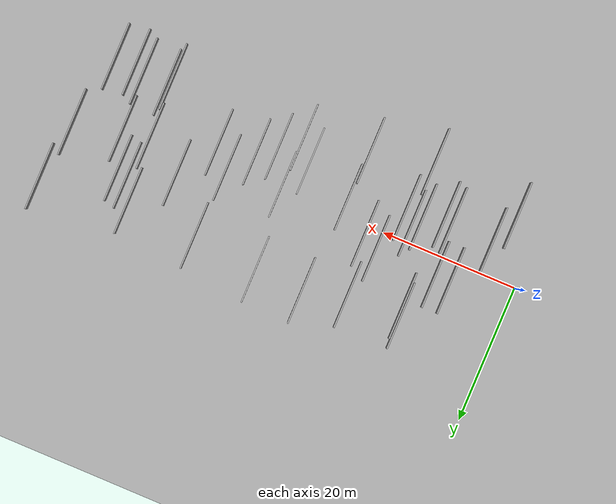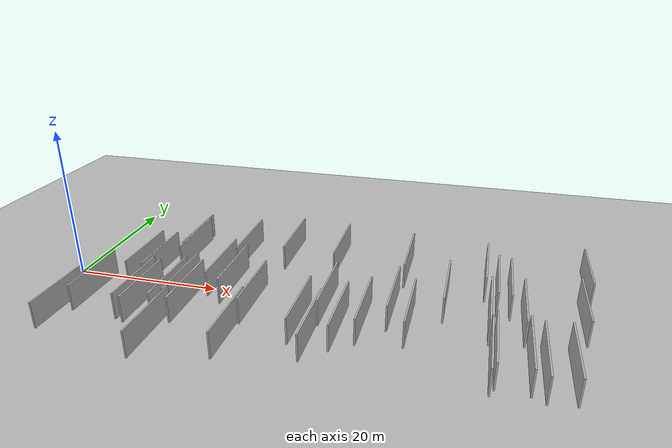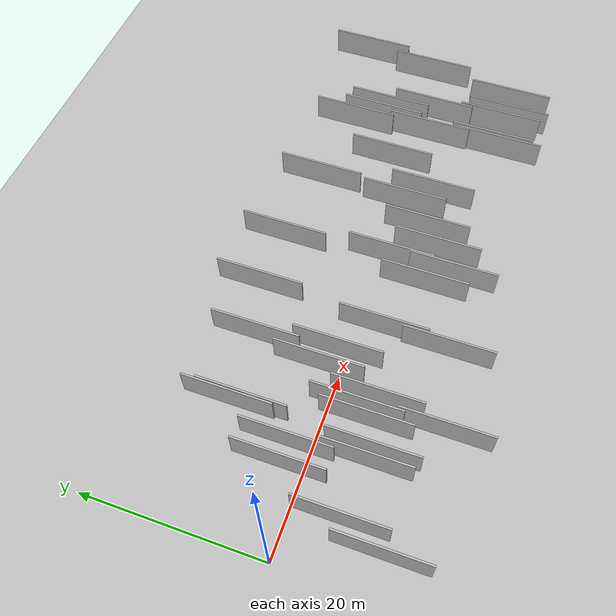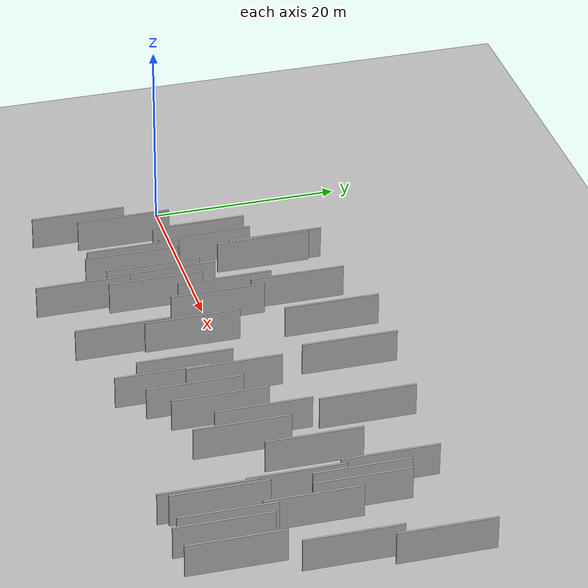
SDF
<?xml version="1.0" encoding="utf-8"?>

<sdf version="1.6">

   <world name="default">

      <gui fullscreen="0">

         <camera name="user_camera">

            <pose>-15 0 4.57585 0 0 0</pose>

            <view_controller>orbit</view_controller>

         </camera>

      </gui>

      <scene>

         <sky>

           <clouds>

             <speed>12</speed>

           </clouds>

         </sky>

         <ambient>0.4 0.4 0.4 1</ambient>

         <background>0.7 0.7 0.7 1</background>

         <shadows>1</shadows>

      </scene>

      <gravity>0 0 -9.8066</gravity>

      <magnetic_field>6e-06 2.3e-05 -4.2e-05</magnetic_field>

      <physics default="0" name="default_physics" type="ode">

         <ode>

            <solver>

               <type>quick</type>

               <iters>10</iters>

               <sor>1.0</sor>

               <use_dynamic_moi_rescaling>0</use_dynamic_moi_rescaling>

            </solver>

            <constraints>

               <cfm>0</cfm>

               <erp>0.2</erp>

               <contact_max_correcting_vel>100</contact_max_correcting_vel>

               <contact_surface_layer>0.001</contact_surface_layer>

            </constraints>

         </ode>

         <max_step_size>0.004</max_step_size>

         <real_time_factor>1</real_time_factor>

         <real_time_update_rate>250</real_time_update_rate>

      </physics>

      <light name="sun" type="directional">

         <cast_shadows>1</cast_shadows>

         <pose>0 0 10 0 0 0</pose>

         <diffuse>0.8 0.8 0.8 1</diffuse>

         <specular>0.2 0.2 0.2 1</specular>

         <attenuation>

            <range>1000</range>

            <constant>0.9</constant>

            <linear>0.01</linear>

            <quadratic>0.001</quadratic>

         </attenuation>

         <direction>-0.5 0.1 -0.9</direction>

      </light>

      <include>

         <name>ground_plane_1</name>

         <uri>model://HANNAS_ground_plane</uri>

         <pose>0 0 0  0 0 0</pose>

      </include>

      <include>

         <name>ground_plane_2</name>

         <uri>model://HANNAS_ground_plane</uri>

         <pose>100 0 0  0 0 0</pose>

      </include>

      <model name="HANNAS_wall_1">

         <static>1</static>

         <pose frame="">46.1944 -2.6719 0.0 0.000000 0.000000 1.570796</pose>

         <link name="link">

            <pose frame="">0 0 2.00 0 0 0</pose>

            <collision name="collision">

               <geometry>

                  <box>

                     <size>10.00 0.2 4.00</size>

                  </box>

               </geometry>

               <max_contacts>10</max_contacts>

               <surface>

                  <contact>

                     <ode/>

                  </contact>

                  <bounce/>

                  <friction>

                     <torsional>

                        <ode/>

                     </torsional>

                     <ode/>

                  </friction>

               </surface>

            </collision>

            <visual name="visual">

               <cast_shadows>0</cast_shadows>

               <geometry>

                  <box>

                     <size>10.00 0.2 4.00</size>

                  </box>

               </geometry>

               <material>

                  <script>

                     <uri>model://HANNAS_wall/materials/scripts</uri>

                     <uri>model://HANNAS_wall/materials/textures</uri>

                     <name>vrc/HANNAS_wall</name>

                  </script>

               </material>

            </visual>

            <self_collide>0</self_collide>

            <enable_wind>0</enable_wind>

            <kinematic>0</kinematic>

         </link>

      </model>

      <model name="HANNAS_wall_2">

         <static>1</static>

         <pose frame="">66.1743 2.6868 0.0 0.000000 0.000000 1.570796</pose>

         <link name="link">

            <pose frame="">0 0 2.00 0 0 0</pose>

            <collision name="collision">

               <geometry>

                  <box>

                     <size>10.00 0.2 4.00</size>

                  </box>

               </geometry>

               <max_contacts>10</max_contacts>

               <surface>

                  <contact>

                     <ode/>

                  </contact>

                  <bounce/>

                  <friction>

                     <torsional>

                        <ode/>

                     </torsional>

                     <ode/>

                  </friction>

               </surface>

            </collision>

            <visual name="visual">

               <cast_shadows>0</cast_shadows>

               <geometry>

                  <box>

                     <size>10.00 0.2 4.00</size>

                  </box>

               </geometry>

               <material>

                  <script>

                     <uri>model://HANNAS_wall/materials/scripts</uri>

                     <uri>model://HANNAS_wall/materials/textures</uri>

                     <name>vrc/HANNAS_wall</name>

                  </script>

               </material>

            </visual>

            <self_collide>0</self_collide>

            <enable_wind>0</enable_wind>

            <kinematic>0</kinematic>

         </link>

      </model>

      <model name="HANNAS_wall_3">

         <static>1</static>

         <pose frame="">59.7447 -7.7299 0.0 0.000000 0.000000 1.570796</pose>

         <link name="link">

            <pose frame="">0 0 2.00 0 0 0</pose>

            <collision name="collision">

               <geometry>

                  <box>

                     <size>10.00 0.2 4.00</size>

                  </box>

               </geometry>

               <max_contacts>10</max_contacts>

               <surface>

                  <contact>

                     <ode/>

                  </contact>

                  <bounce/>

                  <friction>

                     <torsional>

                        <ode/>

                     </torsional>

                     <ode/>

                  </friction>

               </surface>

            </collision>

            <visual name="visual">

               <cast_shadows>0</cast_shadows>

               <geometry>

                  <box>

                     <size>10.00 0.2 4.00</size>

                  </box>

               </geometry>

               <material>

                  <script>

                     <uri>model://HANNAS_wall/materials/scripts</uri>

                     <uri>model://HANNAS_wall/materials/textures</uri>

                     <name>vrc/HANNAS_wall</name>

                  </script>

               </material>

            </visual>

            <self_collide>0</self_collide>

            <enable_wind>0</enable_wind>

            <kinematic>0</kinematic>

         </link>

      </model>

      <model name="HANNAS_wall_4">

         <static>1</static>

         <pose frame="">64.1469 -8.0985 0.0 0.000000 0.000000 1.570796</pose>

         <link name="link">

            <pose frame="">0 0 2.00 0 0 0</pose>

            <collision name="collision">

               <geometry>

                  <box>

                     <size>10.00 0.2 4.00</size>

                  </box>

               </geometry>

               <max_contacts>10</max_contacts>

               <surface>

                  <contact>

                     <ode/>

                  </contact>

                  <bounce/>

                  <friction>

                     <torsional>

                        <ode/>

                     </torsional>

                     <ode/>

                  </friction>

               </surface>

            </collision>

            <visual name="visual">

               <cast_shadows>0</cast_shadows>

               <geometry>

                  <box>

                     <size>10.00 0.2 4.00</size>

                  </box>

               </geometry>

               <material>

                  <script>

                     <uri>model://HANNAS_wall/materials/scripts</uri>

                     <uri>model://HANNAS_wall/materials/textures</uri>

                     <name>vrc/HANNAS_wall</name>

                  </script>

               </material>

            </visual>

            <self_collide>0</self_collide>

            <enable_wind>0</enable_wind>

            <kinematic>0</kinematic>

         </link>

      </model>

      <model name="HANNAS_wall_5">

         <static>1</static>

         <pose frame="">11.7947 -5.3657 0.0 0.000000 0.000000 1.570796</pose>

         <link name="link">

            <pose frame="">0 0 2.00 0 0 0</pose>

            <collision name="collision">

               <geometry>

                  <box>

                     <size>10.00 0.2 4.00</size>

                  </box>

               </geometry>

               <max_contacts>10</max_contacts>

               <surface>

                  <contact>

                     <ode/>

                  </contact>

                  <bounce/>

                  <friction>

                     <torsional>

                        <ode/>

                     </torsional>

                     <ode/>

                  </friction>

               </surface>

            </collision>

            <visual name="visual">

               <cast_shadows>0</cast_shadows>

               <geometry>

                  <box>

                     <size>10.00 0.2 4.00</size>

                  </box>

               </geometry>

               <material>

                  <script>

                     <uri>model://HANNAS_wall/materials/scripts</uri>

                     <uri>model://HANNAS_wall/materials/textures</uri>

                     <name>vrc/HANNAS_wall</name>

                  </script>

               </material>

            </visual>

            <self_collide>0</self_collide>

            <enable_wind>0</enable_wind>

            <kinematic>0</kinematic>

         </link>

      </model>

      <model name="HANNAS_wall_6">

         <static>1</static>

         <pose frame="">26.2054 -9.8777 0.0 0.000000 0.000000 1.570796</pose>

         <link name="link">

            <pose frame="">0 0 2.00 0 0 0</pose>

            <collision name="collision">

               <geometry>

                  <box>

                     <size>10.00 0.2 4.00</size>

                  </box>

               </geometry>

               <max_contacts>10</max_contacts>

               <surface>

                  <contact>

                     <ode/>

                  </contact>

                  <bounce/>

                  <friction>

                     <torsional>

                        <ode/>

                     </torsional>

                     <ode/>

                  </friction>

               </surface>

            </collision>

            <visual name="visual">

               <cast_shadows>0</cast_shadows>

               <geometry>

                  <box>

                     <size>10.00 0.2 4.00</size>

                  </box>

               </geometry>

               <material>

                  <script>

                     <uri>model://HANNAS_wall/materials/scripts</uri>

                     <uri>model://HANNAS_wall/materials/textures</uri>

                     <name>vrc/HANNAS_wall</name>

                  </script>

               </material>

            </visual>

            <self_collide>0</self_collide>

            <enable_wind>0</enable_wind>

            <kinematic>0</kinematic>

         </link>

      </model>

      <model name="HANNAS_wall_7">

         <static>1</static>

         <pose frame="">15.8672 -4.1715 0.0 0.000000 0.000000 1.570796</pose>

         <link name="link">

            <pose frame="">0 0 2.00 0 0 0</pose>

            <collision name="collision">

               <geometry>

                  <box>

                     <size>10.00 0.2 4.00</size>

                  </box>

               </geometry>

               <max_contacts>10</max_contacts>

               <surface>

                  <contact>

                     <ode/>

                  </contact>

                  <bounce/>

                  <friction>

                     <torsional>

                        <ode/>

                     </torsional>

                     <ode/>

                  </friction>

               </surface>

            </collision>

            <visual name="visual">

               <cast_shadows>0</cast_shadows>

               <geometry>

                  <box>

                     <size>10.00 0.2 4.00</size>

                  </box>

               </geometry>

               <material>

                  <script>

                     <uri>model://HANNAS_wall/materials/scripts</uri>

                     <uri>model://HANNAS_wall/materials/textures</uri>

                     <name>vrc/HANNAS_wall</name>

                  </script>

               </material>

            </visual>

            <self_collide>0</self_collide>

            <enable_wind>0</enable_wind>

            <kinematic>0</kinematic>

         </link>

      </model>

      <model name="HANNAS_wall_8">

         <static>1</static>

         <pose frame="">54.6844 9.7779 0.0 0.000000 0.000000 1.570796</pose>

         <link name="link">

            <pose frame="">0 0 2.00 0 0 0</pose>

            <collision name="collision">

               <geometry>

                  <box>

                     <size>10.00 0.2 4.00</size>

                  </box>

               </geometry>

               <max_contacts>10</max_contacts>

               <surface>

                  <contact>

                     <ode/>

                  </contact>

                  <bounce/>

                  <friction>

                     <torsional>

                        <ode/>

                     </torsional>

                     <ode/>

                  </friction>

               </surface>

            </collision>

            <visual name="visual">

               <cast_shadows>0</cast_shadows>

               <geometry>

                  <box>

                     <size>10.00 0.2 4.00</size>

                  </box>

               </geometry>

               <material>

                  <script>

                     <uri>model://HANNAS_wall/materials/scripts</uri>

                     <uri>model://HANNAS_wall/materials/textures</uri>

                     <name>vrc/HANNAS_wall</name>

                  </script>

               </material>

            </visual>

            <self_collide>0</self_collide>

            <enable_wind>0</enable_wind>

            <kinematic>0</kinematic>

         </link>

      </model>

      <model name="HANNAS_wall_9">

         <static>1</static>

         <pose frame="">26.5602 -2.6803 0.0 0.000000 0.000000 1.570796</pose>

         <link name="link">

            <pose frame="">0 0 2.00 0 0 0</pose>

            <collision name="collision">

               <geometry>

                  <box>

                     <size>10.00 0.2 4.00</size>

                  </box>

               </geometry>

               <max_contacts>10</max_contacts>

               <surface>

                  <contact>

                     <ode/>

                  </contact>

                  <bounce/>

                  <friction>

                     <torsional>

                        <ode/>

                     </torsional>

                     <ode/>

                  </friction>

               </surface>

            </collision>

            <visual name="visual">

               <cast_shadows>0</cast_shadows>

               <geometry>

                  <box>

                     <size>10.00 0.2 4.00</size>

                  </box>

               </geometry>

               <material>

                  <script>

                     <uri>model://HANNAS_wall/materials/scripts</uri>

                     <uri>model://HANNAS_wall/materials/textures</uri>

                     <name>vrc/HANNAS_wall</name>

                  </script>

               </material>

            </visual>

            <self_collide>0</self_collide>

            <enable_wind>0</enable_wind>

            <kinematic>0</kinematic>

         </link>

      </model>

      <model name="HANNAS_wall_10">

         <static>1</static>

         <pose frame="">13.6377 8.3265 0.0 0.000000 0.000000 1.570796</pose>

         <link name="link">

            <pose frame="">0 0 2.00 0 0 0</pose>

            <collision name="collision">

               <geometry>

                  <box>

                     <size>10.00 0.2 4.00</size>

                  </box>

               </geometry>

               <max_contacts>10</max_contacts>

               <surface>

                  <contact>

                     <ode/>

                  </contact>

                  <bounce/>

                  <friction>

                     <torsional>

                        <ode/>

                     </torsional>

                     <ode/>

                  </friction>

               </surface>

            </collision>

            <visual name="visual">

               <cast_shadows>0</cast_shadows>

               <geometry>

                  <box>

                     <size>10.00 0.2 4.00</size>

                  </box>

               </geometry>

               <material>

                  <script>

                     <uri>model://HANNAS_wall/materials/scripts</uri>

                     <uri>model://HANNAS_wall/materials/textures</uri>

                     <name>vrc/HANNAS_wall</name>

                  </script>

               </material>

            </visual>

            <self_collide>0</self_collide>

            <enable_wind>0</enable_wind>

            <kinematic>0</kinematic>

         </link>

      </model>

      <model name="HANNAS_wall_11">

         <static>1</static>

         <pose frame="">17.2770 -11.9880 0.0 0.000000 0.000000 1.570796</pose>

         <link name="link">

            <pose frame="">0 0 2.00 0 0 0</pose>

            <collision name="collision">

               <geometry>

                  <box>

                     <size>10.00 0.2 4.00</size>

                  </box>

               </geometry>

               <max_contacts>10</max_contacts>

               <surface>

                  <contact>

                     <ode/>

                  </contact>

                  <bounce/>

                  <friction>

                     <torsional>

                        <ode/>

                     </torsional>

                     <ode/>

                  </friction>

               </surface>

            </collision>

            <visual name="visual">

               <cast_shadows>0</cast_shadows>

               <geometry>

                  <box>

                     <size>10.00 0.2 4.00</size>

                  </box>

               </geometry>

               <material>

                  <script>

                     <uri>model://HANNAS_wall/materials/scripts</uri>

                     <uri>model://HANNAS_wall/materials/textures</uri>

                     <name>vrc/HANNAS_wall</name>

                  </script>

               </material>

            </visual>

            <self_collide>0</self_collide>

            <enable_wind>0</enable_wind>

            <kinematic>0</kinematic>

         </link>

      </model>

      <model name="HANNAS_wall_12">

         <static>1</static>

         <pose frame="">67.4235 11.4272 0.0 0.000000 0.000000 1.570796</pose>

         <link name="link">

            <pose frame="">0 0 2.00 0 0 0</pose>

            <collision name="collision">

               <geometry>

                  <box>

                     <size>10.00 0.2 4.00</size>

                  </box>

               </geometry>

               <max_contacts>10</max_contacts>

               <surface>

                  <contact>

                     <ode/>

                  </contact>

                  <bounce/>

                  <friction>

                     <torsional>

                        <ode/>

                     </torsional>

                     <ode/>

                  </friction>

               </surface>

            </collision>

            <visual name="visual">

               <cast_shadows>0</cast_shadows>

               <geometry>

                  <box>

                     <size>10.00 0.2 4.00</size>

                  </box>

               </geometry>

               <material>

                  <script>

                     <uri>model://HANNAS_wall/materials/scripts</uri>

                     <uri>model://HANNAS_wall/materials/textures</uri>

                     <name>vrc/HANNAS_wall</name>

                  </script>

               </material>

            </visual>

            <self_collide>0</self_collide>

            <enable_wind>0</enable_wind>

            <kinematic>0</kinematic>

         </link>

      </model>

      <model name="HANNAS_wall_13">

         <static>1</static>

         <pose frame="">56.1183 -7.5650 0.0 0.000000 0.000000 1.570796</pose>

         <link name="link">

            <pose frame="">0 0 2.00 0 0 0</pose>

            <collision name="collision">

               <geometry>

                  <box>

                     <size>10.00 0.2 4.00</size>

                  </box>

               </geometry>

               <max_contacts>10</max_contacts>

               <surface>

                  <contact>

                     <ode/>

                  </contact>

                  <bounce/>

                  <friction>

                     <torsional>

                        <ode/>

                     </torsional>

                     <ode/>

                  </friction>

               </surface>

            </collision>

            <visual name="visual">

               <cast_shadows>0</cast_shadows>

               <geometry>

                  <box>

                     <size>10.00 0.2 4.00</size>

                  </box>

               </geometry>

               <material>

                  <script>

                     <uri>model://HANNAS_wall/materials/scripts</uri>

                     <uri>model://HANNAS_wall/materials/textures</uri>

                     <name>vrc/HANNAS_wall</name>

                  </script>

               </material>

            </visual>

            <self_collide>0</self_collide>

            <enable_wind>0</enable_wind>

            <kinematic>0</kinematic>

         </link>

      </model>

      <model name="HANNAS_wall_14">

         <static>1</static>

         <pose frame="">12.9855 -5.7944 0.0 0.000000 0.000000 1.570796</pose>

         <link name="link">

            <pose frame="">0 0 2.00 0 0 0</pose>

            <collision name="collision">

               <geometry>

                  <box>

                     <size>10.00 0.2 4.00</size>

                  </box>

               </geometry>

               <max_contacts>10</max_contacts>

               <surface>

                  <contact>

                     <ode/>

                  </contact>

                  <bounce/>

                  <friction>

                     <torsional>

                        <ode/>

                     </torsional>

                     <ode/>

                  </friction>

               </surface>

            </collision>

            <visual name="visual">

               <cast_shadows>0</cast_shadows>

               <geometry>

                  <box>

                     <size>10.00 0.2 4.00</size>

                  </box>

               </geometry>

               <material>

                  <script>

                     <uri>model://HANNAS_wall/materials/scripts</uri>

                     <uri>model://HANNAS_wall/materials/textures</uri>

                     <name>vrc/HANNAS_wall</name>

                  </script>

               </material>

            </visual>

            <self_collide>0</self_collide>

            <enable_wind>0</enable_wind>

            <kinematic>0</kinematic>

         </link>

      </model>

      <model name="HANNAS_wall_15">

         <static>1</static>

         <pose frame="">44.2848 10.6648 0.0 0.000000 0.000000 1.570796</pose>

         <link name="link">

            <pose frame="">0 0 2.00 0 0 0</pose>

            <collision name="collision">

               <geometry>

                  <box>

                     <size>10.00 0.2 4.00</size>

                  </box>

               </geometry>

               <max_contacts>10</max_contacts>

               <surface>

                  <contact>

                     <ode/>

                  </contact>

                  <bounce/>

                  <friction>

                     <torsional>

                        <ode/>

                     </torsional>

                     <ode/>

                  </friction>

               </surface>

            </collision>

            <visual name="visual">

               <cast_shadows>0</cast_shadows>

               <geometry>

                  <box>

                     <size>10.00 0.2 4.00</size>

                  </box>

               </geometry>

               <material>

                  <script>

                     <uri>model://HANNAS_wall/materials/scripts</uri>

                     <uri>model://HANNAS_wall/materials/textures</uri>

                     <name>vrc/HANNAS_wall</name>

                  </script>

               </material>

            </visual>

            <self_collide>0</self_collide>

            <enable_wind>0</enable_wind>

            <kinematic>0</kinematic>

         </link>

      </model>

      <model name="HANNAS_wall_16">

         <static>1</static>

         <pose frame="">33.3960 -5.2320 0.0 0.000000 0.000000 1.570796</pose>

         <link name="link">

            <pose frame="">0 0 2.00 0 0 0</pose>

            <collision name="collision">

               <geometry>

                  <box>

                     <size>10.00 0.2 4.00</size>

                  </box>

               </geometry>

               <max_contacts>10</max_contacts>

               <surface>

                  <contact>

                     <ode/>

                  </contact>

                  <bounce/>

                  <friction>

                     <torsional>

                        <ode/>

                     </torsional>

                     <ode/>

                  </friction>

               </surface>

            </collision>

            <visual name="visual">

               <cast_shadows>0</cast_shadows>

               <geometry>

                  <box>

                     <size>10.00 0.2 4.00</size>

                  </box>

               </geometry>

               <material>

                  <script>

                     <uri>model://HANNAS_wall/materials/scripts</uri>

                     <uri>model://HANNAS_wall/materials/textures</uri>

                     <name>vrc/HANNAS_wall</name>

                  </script>

               </material>

            </visual>

            <self_collide>0</self_collide>

            <enable_wind>0</enable_wind>

            <kinematic>0</kinematic>

         </link>

      </model>

      <model name="HANNAS_wall_17">

         <static>1</static>

         <pose frame="">3.7896 -9.5188 0.0 0.000000 0.000000 1.570796</pose>

         <link name="link">

            <pose frame="">0 0 2.00 0 0 0</pose>

            <collision name="collision">

               <geometry>

                  <box>

                     <size>10.00 0.2 4.00</size>

                  </box>

               </geometry>

               <max_contacts>10</max_contacts>

               <surface>

                  <contact>

                     <ode/>

                  </contact>

                  <bounce/>

                  <friction>

                     <torsional>

                        <ode/>

                     </torsional>

                     <ode/>

                  </friction>

               </surface>

            </collision>

            <visual name="visual">

               <cast_shadows>0</cast_shadows>

               <geometry>

                  <box>

                     <size>10.00 0.2 4.00</size>

                  </box>

               </geometry>

               <material>

                  <script>

                     <uri>model://HANNAS_wall/materials/scripts</uri>

                     <uri>model://HANNAS_wall/materials/textures</uri>

                     <name>vrc/HANNAS_wall</name>

                  </script>

               </material>

            </visual>

            <self_collide>0</self_collide>

            <enable_wind>0</enable_wind>

            <kinematic>0</kinematic>

         </link>

      </model>

      <model name="HANNAS_wall_18">

         <static>1</static>

         <pose frame="">61.1691 -8.4923 0.0 0.000000 0.000000 1.570796</pose>

         <link name="link">

            <pose frame="">0 0 2.00 0 0 0</pose>

            <collision name="collision">

               <geometry>

                  <box>

                     <size>10.00 0.2 4.00</size>

                  </box>

               </geometry>

               <max_contacts>10</max_contacts>

               <surface>

                  <contact>

                     <ode/>

                  </contact>

                  <bounce/>

                  <friction>

                     <torsional>

                        <ode/>

                     </torsional>

                     <ode/>

                  </friction>

               </surface>

            </collision>

            <visual name="visual">

               <cast_shadows>0</cast_shadows>

               <geometry>

                  <box>

                     <size>10.00 0.2 4.00</size>

                  </box>

               </geometry>

               <material>

                  <script>

                     <uri>model://HANNAS_wall/materials/scripts</uri>

                     <uri>model://HANNAS_wall/materials/textures</uri>

                     <name>vrc/HANNAS_wall</name>

                  </script>

               </material>

            </visual>

            <self_collide>0</self_collide>

            <enable_wind>0</enable_wind>

            <kinematic>0</kinematic>

         </link>

      </model>

      <model name="HANNAS_wall_19">

         <static>1</static>

         <pose frame="">49.9770 3.5240 0.0 0.000000 0.000000 1.570796</pose>

         <link name="link">

            <pose frame="">0 0 2.00 0 0 0</pose>

            <collision name="collision">

               <geometry>

                  <box>

                     <size>10.00 0.2 4.00</size>

                  </box>

               </geometry>

               <max_contacts>10</max_contacts>

               <surface>

                  <contact>

                     <ode/>

                  </contact>

                  <bounce/>

                  <friction>

                     <torsional>

                        <ode/>

                     </torsional>

                     <ode/>

                  </friction>

               </surface>

            </collision>

            <visual name="visual">

               <cast_shadows>0</cast_shadows>

               <geometry>

                  <box>

                     <size>10.00 0.2 4.00</size>

                  </box>

               </geometry>

               <material>

                  <script>

                     <uri>model://HANNAS_wall/materials/scripts</uri>

                     <uri>model://HANNAS_wall/materials/textures</uri>

                     <name>vrc/HANNAS_wall</name>

                  </script>

               </material>

            </visual>

            <self_collide>0</self_collide>

            <enable_wind>0</enable_wind>

            <kinematic>0</kinematic>

         </link>

      </model>

      <model name="HANNAS_wall_20">

         <static>1</static>

         <pose frame="">16.9431 -2.7941 0.0 0.000000 0.000000 1.570796</pose>

         <link name="link">

            <pose frame="">0 0 2.00 0 0 0</pose>

            <collision name="collision">

               <geometry>

                  <box>

                     <size>10.00 0.2 4.00</size>

                  </box>

               </geometry>

               <max_contacts>10</max_contacts>

               <surface>

                  <contact>

                     <ode/>

                  </contact>

                  <bounce/>

                  <friction>

                     <torsional>

                        <ode/>

                     </torsional>

                     <ode/>

                  </friction>

               </surface>

            </collision>

            <visual name="visual">

               <cast_shadows>0</cast_shadows>

               <geometry>

                  <box>

                     <size>10.00 0.2 4.00</size>

                  </box>

               </geometry>

               <material>

                  <script>

                     <uri>model://HANNAS_wall/materials/scripts</uri>

                     <uri>model://HANNAS_wall/materials/textures</uri>

                     <name>vrc/HANNAS_wall</name>

                  </script>

               </material>

            </visual>

            <self_collide>0</self_collide>

            <enable_wind>0</enable_wind>

            <kinematic>0</kinematic>

         </link>

      </model>

      <model name="HANNAS_wall_21">

         <static>1</static>

         <pose frame="">56.1847 6.5503 0.0 0.000000 0.000000 1.570796</pose>

         <link name="link">

            <pose frame="">0 0 2.00 0 0 0</pose>

            <collision name="collision">

               <geometry>

                  <box>

                     <size>10.00 0.2 4.00</size>

                  </box>

               </geometry>

               <max_contacts>10</max_contacts>

               <surface>

                  <contact>

                     <ode/>

                  </contact>

                  <bounce/>

                  <friction>

                     <torsional>

                        <ode/>

                     </torsional>

                     <ode/>

                  </friction>

               </surface>

            </collision>

            <visual name="visual">

               <cast_shadows>0</cast_shadows>

               <geometry>

                  <box>

                     <size>10.00 0.2 4.00</size>

                  </box>

               </geometry>

               <material>

                  <script>

                     <uri>model://HANNAS_wall/materials/scripts</uri>

                     <uri>model://HANNAS_wall/materials/textures</uri>

                     <name>vrc/HANNAS_wall</name>

                  </script>

               </material>

            </visual>

            <self_collide>0</self_collide>

            <enable_wind>0</enable_wind>

            <kinematic>0</kinematic>

         </link>

      </model>

      <model name="HANNAS_wall_22">

         <static>1</static>

         <pose frame="">55.3745 0.2356 0.0 0.000000 0.000000 1.570796</pose>

         <link name="link">

            <pose frame="">0 0 2.00 0 0 0</pose>

            <collision name="collision">

               <geometry>

                  <box>

                     <size>10.00 0.2 4.00</size>

                  </box>

               </geometry>

               <max_contacts>10</max_contacts>

               <surface>

                  <contact>

                     <ode/>

                  </contact>

                  <bounce/>

                  <friction>

                     <torsional>

                        <ode/>

                     </torsional>

                     <ode/>

                  </friction>

               </surface>

            </collision>

            <visual name="visual">

               <cast_shadows>0</cast_shadows>

               <geometry>

                  <box>

                     <size>10.00 0.2 4.00</size>

                  </box>

               </geometry>

               <material>

                  <script>

                     <uri>model://HANNAS_wall/materials/scripts</uri>

                     <uri>model://HANNAS_wall/materials/textures</uri>

                     <name>vrc/HANNAS_wall</name>

                  </script>

               </material>

            </visual>

            <self_collide>0</self_collide>

            <enable_wind>0</enable_wind>

            <kinematic>0</kinematic>

         </link>

      </model>

      <model name="HANNAS_wall_23">

         <static>1</static>

         <pose frame="">20.2156 2.3959 0.0 0.000000 0.000000 1.570796</pose>

         <link name="link">

            <pose frame="">0 0 2.00 0 0 0</pose>

            <collision name="collision">

               <geometry>

                  <box>

                     <size>10.00 0.2 4.00</size>

                  </box>

               </geometry>

               <max_contacts>10</max_contacts>

               <surface>

                  <contact>

                     <ode/>

                  </contact>

                  <bounce/>

                  <friction>

                     <torsional>

                        <ode/>

                     </torsional>

                     <ode/>

                  </friction>

               </surface>

            </collision>

            <visual name="visual">

               <cast_shadows>0</cast_shadows>

               <geometry>

                  <box>

                     <size>10.00 0.2 4.00</size>

                  </box>

               </geometry>

               <material>

                  <script>

                     <uri>model://HANNAS_wall/materials/scripts</uri>

                     <uri>model://HANNAS_wall/materials/textures</uri>

                     <name>vrc/HANNAS_wall</name>

                  </script>

               </material>

            </visual>

            <self_collide>0</self_collide>

            <enable_wind>0</enable_wind>

            <kinematic>0</kinematic>

         </link>

      </model>

      <model name="HANNAS_wall_24">

         <static>1</static>

         <pose frame="">40.8254 -3.4929 0.0 0.000000 0.000000 1.570796</pose>

         <link name="link">

            <pose frame="">0 0 2.00 0 0 0</pose>

            <collision name="collision">

               <geometry>

                  <box>

                     <size>10.00 0.2 4.00</size>

                  </box>

               </geometry>

               <max_contacts>10</max_contacts>

               <surface>

                  <contact>

                     <ode/>

                  </contact>

                  <bounce/>

                  <friction>

                     <torsional>

                        <ode/>

                     </torsional>

                     <ode/>

                  </friction>

               </surface>

            </collision>

            <visual name="visual">

               <cast_shadows>0</cast_shadows>

               <geometry>

                  <box>

                     <size>10.00 0.2 4.00</size>

                  </box>

               </geometry>

               <material>

                  <script>

                     <uri>model://HANNAS_wall/materials/scripts</uri>

                     <uri>model://HANNAS_wall/materials/textures</uri>

                     <name>vrc/HANNAS_wall</name>

                  </script>

               </material>

            </visual>

            <self_collide>0</self_collide>

            <enable_wind>0</enable_wind>

            <kinematic>0</kinematic>

         </link>

      </model>

      <model name="HANNAS_wall_25">

         <static>1</static>

         <pose frame="">13.3742 9.7212 0.0 0.000000 0.000000 1.570796</pose>

         <link name="link">

            <pose frame="">0 0 2.00 0 0 0</pose>

            <collision name="collision">

               <geometry>

                  <box>

                     <size>10.00 0.2 4.00</size>

                  </box>

               </geometry>

               <max_contacts>10</max_contacts>

               <surface>

                  <contact>

                     <ode/>

                  </contact>

                  <bounce/>

                  <friction>

                     <torsional>

                        <ode/>

                     </torsional>

                     <ode/>

                  </friction>

               </surface>

            </collision>

            <visual name="visual">

               <cast_shadows>0</cast_shadows>

               <geometry>

                  <box>

                     <size>10.00 0.2 4.00</size>

                  </box>

               </geometry>

               <material>

                  <script>

                     <uri>model://HANNAS_wall/materials/scripts</uri>

                     <uri>model://HANNAS_wall/materials/textures</uri>

                     <name>vrc/HANNAS_wall</name>

                  </script>

               </material>

            </visual>

            <self_collide>0</self_collide>

            <enable_wind>0</enable_wind>

            <kinematic>0</kinematic>

         </link>

      </model>

      <model name="HANNAS_wall_26">

         <static>1</static>

         <pose frame="">38.2579 -5.4062 0.0 0.000000 0.000000 1.570796</pose>

         <link name="link">

            <pose frame="">0 0 2.00 0 0 0</pose>

            <collision name="collision">

               <geometry>

                  <box>

                     <size>10.00 0.2 4.00</size>

                  </box>

               </geometry>

               <max_contacts>10</max_contacts>

               <surface>

                  <contact>

                     <ode/>

                  </contact>

                  <bounce/>

                  <friction>

                     <torsional>

                        <ode/>

                     </torsional>

                     <ode/>

                  </friction>

               </surface>

            </collision>

            <visual name="visual">

               <cast_shadows>0</cast_shadows>

               <geometry>

                  <box>

                     <size>10.00 0.2 4.00</size>

                  </box>

               </geometry>

               <material>

                  <script>

                     <uri>model://HANNAS_wall/materials/scripts</uri>

                     <uri>model://HANNAS_wall/materials/textures</uri>

                     <name>vrc/HANNAS_wall</name>

                  </script>

               </material>

            </visual>

            <self_collide>0</self_collide>

            <enable_wind>0</enable_wind>

            <kinematic>0</kinematic>

         </link>

      </model>

      <model name="HANNAS_wall_27">

         <static>1</static>

         <pose frame="">18.4495 -4.5219 0.0 0.000000 0.000000 1.570796</pose>

         <link name="link">

            <pose frame="">0 0 2.00 0 0 0</pose>

            <collision name="collision">

               <geometry>

                  <box>

                     <size>10.00 0.2 4.00</size>

                  </box>

               </geometry>

               <max_contacts>10</max_contacts>

               <surface>

                  <contact>

                     <ode/>

                  </contact>

                  <bounce/>

                  <friction>

                     <torsional>

                        <ode/>

                     </torsional>

                     <ode/>

                  </friction>

               </surface>

            </collision>

            <visual name="visual">

               <cast_shadows>0</cast_shadows>

               <geometry>

                  <box>

                     <size>10.00 0.2 4.00</size>

                  </box>

               </geometry>

               <material>

                  <script>

                     <uri>model://HANNAS_wall/materials/scripts</uri>

                     <uri>model://HANNAS_wall/materials/textures</uri>

                     <name>vrc/HANNAS_wall</name>

                  </script>

               </material>

            </visual>

            <self_collide>0</self_collide>

            <enable_wind>0</enable_wind>

            <kinematic>0</kinematic>

         </link>

      </model>

      <model name="HANNAS_wall_28">

         <static>1</static>

         <pose frame="">27.4997 11.8691 0.0 0.000000 0.000000 1.570796</pose>

         <link name="link">

            <pose frame="">0 0 2.00 0 0 0</pose>

            <collision name="collision">

               <geometry>

                  <box>

                     <size>10.00 0.2 4.00</size>

                  </box>

               </geometry>

               <max_contacts>10</max_contacts>

               <surface>

                  <contact>

                     <ode/>

                  </contact>

                  <bounce/>

                  <friction>

                     <torsional>

                        <ode/>

                     </torsional>

                     <ode/>

                  </friction>

               </surface>

            </collision>

            <visual name="visual">

               <cast_shadows>0</cast_shadows>

               <geometry>

                  <box>

                     <size>10.00 0.2 4.00</size>

                  </box>

               </geometry>

               <material>

                  <script>

                     <uri>model://HANNAS_wall/materials/scripts</uri>

                     <uri>model://HANNAS_wall/materials/textures</uri>

                     <name>vrc/HANNAS_wall</name>

                  </script>

               </material>

            </visual>

            <self_collide>0</self_collide>

            <enable_wind>0</enable_wind>

            <kinematic>0</kinematic>

         </link>

      </model>

      <model name="HANNAS_wall_29">

         <static>1</static>

         <pose frame="">21.3413 9.9047 0.0 0.000000 0.000000 1.570796</pose>

         <link name="link">

            <pose frame="">0 0 2.00 0 0 0</pose>

            <collision name="collision">

               <geometry>

                  <box>

                     <size>10.00 0.2 4.00</size>

                  </box>

               </geometry>

               <max_contacts>10</max_contacts>

               <surface>

                  <contact>

                     <ode/>

                  </contact>

                  <bounce/>

                  <friction>

                     <torsional>

                        <ode/>

                     </torsional>

                     <ode/>

                  </friction>

               </surface>

            </collision>

            <visual name="visual">

               <cast_shadows>0</cast_shadows>

               <geometry>

                  <box>

                     <size>10.00 0.2 4.00</size>

                  </box>

               </geometry>

               <material>

                  <script>

                     <uri>model://HANNAS_wall/materials/scripts</uri>

                     <uri>model://HANNAS_wall/materials/textures</uri>

                     <name>vrc/HANNAS_wall</name>

                  </script>

               </material>

            </visual>

            <self_collide>0</self_collide>

            <enable_wind>0</enable_wind>

            <kinematic>0</kinematic>

         </link>

      </model>

      <model name="HANNAS_wall_30">

         <static>1</static>

         <pose frame="">34.6041 11.6668 0.0 0.000000 0.000000 1.570796</pose>

         <link name="link">

            <pose frame="">0 0 2.00 0 0 0</pose>

            <collision name="collision">

               <geometry>

                  <box>

                     <size>10.00 0.2 4.00</size>

                  </box>

               </geometry>

               <max_contacts>10</max_contacts>

               <surface>

                  <contact>

                     <ode/>

                  </contact>

                  <bounce/>

                  <friction>

                     <torsional>

                        <ode/>

                     </torsional>

                     <ode/>

                  </friction>

               </surface>

            </collision>

            <visual name="visual">

               <cast_shadows>0</cast_shadows>

               <geometry>

                  <box>

                     <size>10.00 0.2 4.00</size>

                  </box>

               </geometry>

               <material>

                  <script>

                     <uri>model://HANNAS_wall/materials/scripts</uri>

                     <uri>model://HANNAS_wall/materials/textures</uri>

                     <name>vrc/HANNAS_wall</name>

                  </script>

               </material>

            </visual>

            <self_collide>0</self_collide>

            <enable_wind>0</enable_wind>

            <kinematic>0</kinematic>

         </link>

      </model>

      <model name="HANNAS_wall_31">

         <static>1</static>

         <pose frame="">8.8476 2.4889 0.0 0.000000 0.000000 1.570796</pose>

         <link name="link">

            <pose frame="">0 0 2.00 0 0 0</pose>

            <collision name="collision">

               <geometry>

                  <box>

                     <size>10.00 0.2 4.00</size>

                  </box>

               </geometry>

               <max_contacts>10</max_contacts>

               <surface>

                  <contact>

                     <ode/>

                  </contact>

                  <bounce/>

                  <friction>

                     <torsional>

                        <ode/>

                     </torsional>

                     <ode/>

                  </friction>

               </surface>

            </collision>

            <visual name="visual">

               <cast_shadows>0</cast_shadows>

               <geometry>

                  <box>

                     <size>10.00 0.2 4.00</size>

                  </box>

               </geometry>

               <material>

                  <script>

                     <uri>model://HANNAS_wall/materials/scripts</uri>

                     <uri>model://HANNAS_wall/materials/textures</uri>

                     <name>vrc/HANNAS_wall</name>

                  </script>

               </material>

            </visual>

            <self_collide>0</self_collide>

            <enable_wind>0</enable_wind>

            <kinematic>0</kinematic>

         </link>

      </model>

      <model name="HANNAS_wall_32">

         <static>1</static>

         <pose frame="">5.5682 -4.9475 0.0 0.000000 0.000000 1.570796</pose>

         <link name="link">

            <pose frame="">0 0 2.00 0 0 0</pose>

            <collision name="collision">

               <geometry>

                  <box>

                     <size>10.00 0.2 4.00</size>

                  </box>

               </geometry>

               <max_contacts>10</max_contacts>

               <surface>

                  <contact>

                     <ode/>

                  </contact>

                  <bounce/>

                  <friction>

                     <torsional>

                        <ode/>

                     </torsional>

                     <ode/>

                  </friction>

               </surface>

            </collision>

            <visual name="visual">

               <cast_shadows>0</cast_shadows>

               <geometry>

                  <box>

                     <size>10.00 0.2 4.00</size>

                  </box>

               </geometry>

               <material>

                  <script>

                     <uri>model://HANNAS_wall/materials/scripts</uri>

                     <uri>model://HANNAS_wall/materials/textures</uri>

                     <name>vrc/HANNAS_wall</name>

                  </script>

               </material>

            </visual>

            <self_collide>0</self_collide>

            <enable_wind>0</enable_wind>

            <kinematic>0</kinematic>

         </link>

      </model>

      <model name="HANNAS_wall_33">

         <static>1</static>

         <pose frame="">35.5166 -7.9522 0.0 0.000000 0.000000 1.570796</pose>

         <link name="link">

            <pose frame="">0 0 2.00 0 0 0</pose>

            <collision name="collision">

               <geometry>

                  <box>

                     <size>10.00 0.2 4.00</size>

                  </box>

               </geometry>

               <max_contacts>10</max_contacts>

               <surface>

                  <contact>

                     <ode/>

                  </contact>

                  <bounce/>

                  <friction>

                     <torsional>

                        <ode/>

                     </torsional>

                     <ode/>

                  </friction>

               </surface>

            </collision>

            <visual name="visual">

               <cast_shadows>0</cast_shadows>

               <geometry>

                  <box>

                     <size>10.00 0.2 4.00</size>

                  </box>

               </geometry>

               <material>

                  <script>

                     <uri>model://HANNAS_wall/materials/scripts</uri>

                     <uri>model://HANNAS_wall/materials/textures</uri>

                     <name>vrc/HANNAS_wall</name>

                  </script>

               </material>

            </visual>

            <self_collide>0</self_collide>

            <enable_wind>0</enable_wind>

            <kinematic>0</kinematic>

         </link>

      </model>

      <model name="HANNAS_wall_34">

         <static>1</static>

         <pose frame="">43.7984 0.1116 0.0 0.000000 0.000000 1.570796</pose>

         <link name="link">

            <pose frame="">0 0 2.00 0 0 0</pose>

            <collision name="collision">

               <geometry>

                  <box>

                     <size>10.00 0.2 4.00</size>

                  </box>

               </geometry>

               <max_contacts>10</max_contacts>

               <surface>

                  <contact>

                     <ode/>

                  </contact>

                  <bounce/>

                  <friction>

                     <torsional>

                        <ode/>

                     </torsional>

                     <ode/>

                  </friction>

               </surface>

            </collision>

            <visual name="visual">

               <cast_shadows>0</cast_shadows>

               <geometry>

                  <box>

                     <size>10.00 0.2 4.00</size>

                  </box>

               </geometry>

               <material>

                  <script>

                     <uri>model://HANNAS_wall/materials/scripts</uri>

                     <uri>model://HANNAS_wall/materials/textures</uri>

                     <name>vrc/HANNAS_wall</name>

                  </script>

               </material>

            </visual>

            <self_collide>0</self_collide>

            <enable_wind>0</enable_wind>

            <kinematic>0</kinematic>

         </link>

      </model>

      <model name="HANNAS_wall_35">

         <static>1</static>

         <pose frame="">55.6385 -8.6178 0.0 0.000000 0.000000 1.570796</pose>

         <link name="link">

            <pose frame="">0 0 2.00 0 0 0</pose>

            <collision name="collision">

               <geometry>

                  <box>

                     <size>10.00 0.2 4.00</size>

                  </box>

               </geometry>

               <max_contacts>10</max_contacts>

               <surface>

                  <contact>

                     <ode/>

                  </contact>

                  <bounce/>

                  <friction>

                     <torsional>

                        <ode/>

                     </torsional>

                     <ode/>

                  </friction>

               </surface>

            </collision>

            <visual name="visual">

               <cast_shadows>0</cast_shadows>

               <geometry>

                  <box>

                     <size>10.00 0.2 4.00</size>

                  </box>

               </geometry>

               <material>

                  <script>

                     <uri>model://HANNAS_wall/materials/scripts</uri>

                     <uri>model://HANNAS_wall/materials/textures</uri>

                     <name>vrc/HANNAS_wall</name>

                  </script>

               </material>

            </visual>

            <self_collide>0</self_collide>

            <enable_wind>0</enable_wind>

            <kinematic>0</kinematic>

         </link>

      </model>

      <model name="HANNAS_wall_36">

         <static>1</static>

         <pose frame="">35.7242 -0.7236 0.0 0.000000 0.000000 1.570796</pose>

         <link name="link">

            <pose frame="">0 0 2.00 0 0 0</pose>

            <collision name="collision">

               <geometry>

                  <box>

                     <size>10.00 0.2 4.00</size>

                  </box>

               </geometry>

               <max_contacts>10</max_contacts>

               <surface>

                  <contact>

                     <ode/>

                  </contact>

                  <bounce/>

                  <friction>

                     <torsional>

                        <ode/>

                     </torsional>

                     <ode/>

                  </friction>

               </surface>

            </collision>

            <visual name="visual">

               <cast_shadows>0</cast_shadows>

               <geometry>

                  <box>

                     <size>10.00 0.2 4.00</size>

                  </box>

               </geometry>

               <material>

                  <script>

                     <uri>model://HANNAS_wall/materials/scripts</uri>

                     <uri>model://HANNAS_wall/materials/textures</uri>

                     <name>vrc/HANNAS_wall</name>

                  </script>

               </material>

            </visual>

            <self_collide>0</self_collide>

            <enable_wind>0</enable_wind>

            <kinematic>0</kinematic>

         </link>

      </model>

      <model name="HANNAS_wall_37">

         <static>1</static>

         <pose frame="">59.3165 0.7824 0.0 0.000000 0.000000 1.570796</pose>

         <link name="link">

            <pose frame="">0 0 2.00 0 0 0</pose>

            <collision name="collision">

               <geometry>

                  <box>

                     <size>10.00 0.2 4.00</size>

                  </box>

               </geometry>

               <max_contacts>10</max_contacts>

               <surface>

                  <contact>

                     <ode/>

                  </contact>

                  <bounce/>

                  <friction>

                     <torsional>

                        <ode/>

                     </torsional>

                     <ode/>

                  </friction>

               </surface>

            </collision>

            <visual name="visual">

               <cast_shadows>0</cast_shadows>

               <geometry>

                  <box>

                     <size>10.00 0.2 4.00</size>

                  </box>

               </geometry>

               <material>

                  <script>

                     <uri>model://HANNAS_wall/materials/scripts</uri>

                     <uri>model://HANNAS_wall/materials/textures</uri>

                     <name>vrc/HANNAS_wall</name>

                  </script>

               </material>

            </visual>

            <self_collide>0</self_collide>

            <enable_wind>0</enable_wind>

            <kinematic>0</kinematic>

         </link>

      </model>

      <model name="HANNAS_wall_38">

         <static>1</static>

         <pose frame="">57.7613 6.1087 0.0 0.000000 0.000000 1.570796</pose>

         <link name="link">

            <pose frame="">0 0 2.00 0 0 0</pose>

            <collision name="collision">

               <geometry>

                  <box>

                     <size>10.00 0.2 4.00</size>

                  </box>

               </geometry>

               <max_contacts>10</max_contacts>

               <surface>

                  <contact>

                     <ode/>

                  </contact>

                  <bounce/>

                  <friction>

                     <torsional>

                        <ode/>

                     </torsional>

                     <ode/>

                  </friction>

               </surface>

            </collision>

            <visual name="visual">

               <cast_shadows>0</cast_shadows>

               <geometry>

                  <box>

                     <size>10.00 0.2 4.00</size>

                  </box>

               </geometry>

               <material>

                  <script>

                     <uri>model://HANNAS_wall/materials/scripts</uri>

                     <uri>model://HANNAS_wall/materials/textures</uri>

                     <name>vrc/HANNAS_wall</name>

                  </script>

               </material>

            </visual>

            <self_collide>0</self_collide>

            <enable_wind>0</enable_wind>

            <kinematic>0</kinematic>

         </link>

      </model>

      <model name="HANNAS_wall_39">

         <static>1</static>

         <pose frame="">22.4372 1.0729 0.0 0.000000 0.000000 1.570796</pose>

         <link name="link">

            <pose frame="">0 0 2.00 0 0 0</pose>

            <collision name="collision">

               <geometry>

                  <box>

                     <size>10.00 0.2 4.00</size>

                  </box>

               </geometry>

               <max_contacts>10</max_contacts>

               <surface>

                  <contact>

                     <ode/>

                  </contact>

                  <bounce/>

                  <friction>

                     <torsional>

                        <ode/>

                     </torsional>

                     <ode/>

                  </friction>

               </surface>

            </collision>

            <visual name="visual">

               <cast_shadows>0</cast_shadows>

               <geometry>

                  <box>

                     <size>10.00 0.2 4.00</size>

                  </box>

               </geometry>

               <material>

                  <script>

                     <uri>model://HANNAS_wall/materials/scripts</uri>

                     <uri>model://HANNAS_wall/materials/textures</uri>

                     <name>vrc/HANNAS_wall</name>

                  </script>

               </material>

            </visual>

            <self_collide>0</self_collide>

            <enable_wind>0</enable_wind>

            <kinematic>0</kinematic>

         </link>

      </model>

      <model name="HANNAS_wall_40">

         <static>1</static>

         <pose frame="">11.1425 2.5360 0.0 0.000000 0.000000 1.570796</pose>

         <link name="link">

            <pose frame="">0 0 2.00 0 0 0</pose>

            <collision name="collision">

               <geometry>

                  <box>

                     <size>10.00 0.2 4.00</size>

                  </box>

               </geometry>

               <max_contacts>10</max_contacts>

               <surface>

                  <contact>

                     <ode/>

                  </contact>

                  <bounce/>

                  <friction>

                     <torsional>

                        <ode/>

                     </torsional>

                     <ode/>

                  </friction>

               </surface>

            </collision>

            <visual name="visual">

               <cast_shadows>0</cast_shadows>

               <geometry>

                  <box>

                     <size>10.00 0.2 4.00</size>

                  </box>

               </geometry>

               <material>

                  <script>

                     <uri>model://HANNAS_wall/materials/scripts</uri>

                     <uri>model://HANNAS_wall/materials/textures</uri>

                     <name>vrc/HANNAS_wall</name>

                  </script>

               </material>

            </visual>

            <self_collide>0</self_collide>

            <enable_wind>0</enable_wind>

            <kinematic>0</kinematic>

         </link>

      </model>

   </world>

</sdf>
